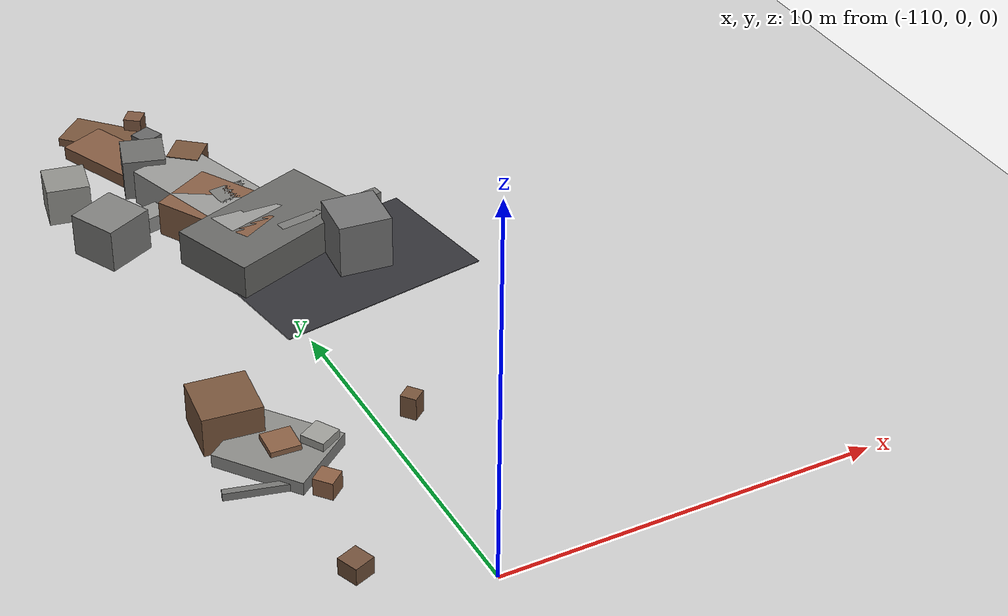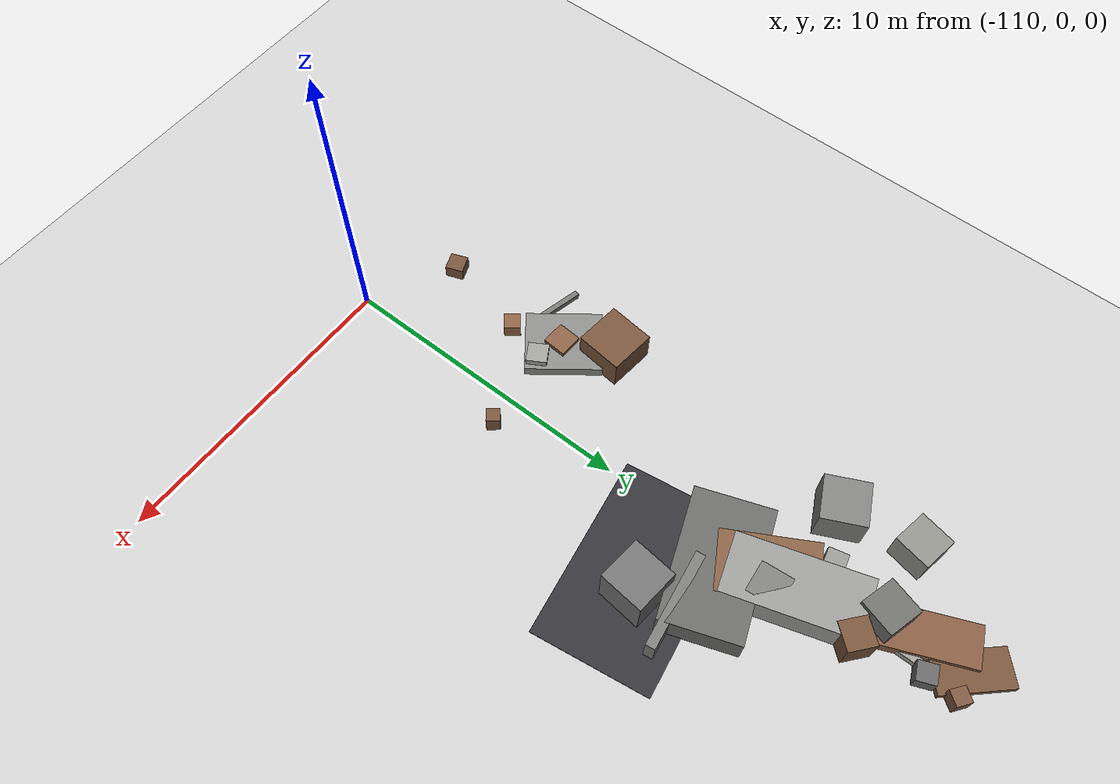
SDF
<sdf version="1.6">
 <world name="navitas_arena">
  <model name="ground_plane">
   <static>true</static>
   <link name="link">
    <collision name="collision">
     <geometry><plane><normal>0 0 1</normal><size>400 400</size></plane></geometry>
     <surface><friction><ode><mu>0.8</mu><mu2>0.8</mu2></ode></friction></surface>
    </collision>
    <visual name="visual">
     <cast_shadows>false</cast_shadows>
     <geometry><plane><normal>0 0 1</normal><size>400 400</size></plane></geometry>
     <material>
      <script><uri>file://media/materials/scripts/gazebo.material</uri><name>Gazebo/Grey</name></script>
     </material>
    </visual>
   </link>
  </model>
  <model name="road_kolay_1_15">
   <static>true</static>
   <pose>-107.834 12.629 0.040 0 0 1.725</pose>
   <link name="link">
    <collision name="col"><geometry><box><size>3.829 6.000 0.020</size></box></geometry></collision>
    <visual name="vis">
     <geometry><box><size>3.829 6.000 0.020</size></box></geometry>
     <material><ambient>0.20 0.20 0.22 1</ambient><diffuse>0.20 0.20 0.22 1</diffuse></material>
    </visual>
   </link>
  </model>
  <model name="blk_kolay_1_1_0">
   <static>true</static>
   <pose>-107.355 12.857 0.773 0 0 3.042</pose>
   <link name="link">
    <collision name="col"><geometry><box><size>1.461 1.461 1.546</size></box></geometry></collision>
    <visual name="vis">
     <geometry><box><size>1.461 1.461 1.546</size></box></geometry>
     <material><ambient>0.45 0.45 0.45 1</ambient><diffuse>0.45 0.45 0.45 1</diffuse></material>
    </visual>
   </link>
  </model>
  <model name="blk_kolay_1_1_1">
   <static>true</static>
   <pose>-109.587 15.832 0.500 0 0 1.661</pose>
   <link name="link">
    <collision name="col"><geometry><box><size>1.030 1.030 1.000</size></box></geometry></collision>
    <visual name="vis">
     <geometry><box><size>1.030 1.030 1.000</size></box></geometry>
     <material><ambient>0.49 0.49 0.48 1</ambient><diffuse>0.49 0.49 0.48 1</diffuse></material>
    </visual>
   </link>
  </model>
  <model name="blk_kolay_1_1_2">
   <static>true</static>
   <pose>-110.018 15.518 0.500 0 0 2.084</pose>
   <link name="link">
    <collision name="col"><geometry><box><size>3.002 1.896 1.000</size></box></geometry></collision>
    <visual name="vis">
     <geometry><box><size>3.002 1.896 1.000</size></box></geometry>
     <material><ambient>0.53 0.37 0.27 1</ambient><diffuse>0.53 0.37 0.27 1</diffuse></material>
    </visual>
   </link>
  </model>
  <model name="blk_kolay_1_1_4">
   <static>true</static>
   <pose>-109.204 14.346 0.500 0 0 0.350</pose>
   <link name="link">
    <collision name="col"><geometry><box><size>4.220 2.503 1.000</size></box></geometry></collision>
    <visual name="vis">
     <geometry><box><size>4.220 2.503 1.000</size></box></geometry>
     <material><ambient>0.41 0.41 0.40 1</ambient><diffuse>0.41 0.41 0.40 1</diffuse></material>
    </visual>
   </link>
  </model>
  <model name="blk_kolay_1_1_5">
   <static>true</static>
   <pose>-107.612 14.014 0.500 0 0 0.144</pose>
   <link name="link">
    <collision name="col"><geometry><box><size>3.121 0.307 1.000</size></box></geometry></collision>
    <visual name="vis">
     <geometry><box><size>3.121 0.307 1.000</size></box></geometry>
     <material><ambient>0.48 0.48 0.47 1</ambient><diffuse>0.48 0.48 0.47 1</diffuse></material>
    </visual>
   </link>
  </model>
  <model name="blk_kolay_1_1_8">
   <static>true</static>
   <pose>-110.063 16.447 0.500 0 0 1.879</pose>
   <link name="link">
    <collision name="col"><geometry><box><size>4.154 1.918 1.000</size></box></geometry></collision>
    <visual name="vis">
     <geometry><box><size>4.154 1.918 1.000</size></box></geometry>
     <material><ambient>0.60 0.60 0.59 1</ambient><diffuse>0.60 0.60 0.59 1</diffuse></material>
    </visual>
   </link>
  </model>
  <model name="deb_kolay_1">
   <static>true</static>
   <pose>-112.604 6.181 0.177 0 0 2.223</pose>
   <link name="link">
    <collision name="col"><geometry><box><size>2.474 2.076 0.354</size></box></geometry></collision>
    <visual name="vis">
     <geometry><box><size>2.474 2.076 0.354</size></box></geometry>
     <material><ambient>0.54 0.54 0.53 1</ambient><diffuse>0.54 0.54 0.53 1</diffuse></material>
    </visual>
   </link>
  </model>
  <model name="deb_kolay_33">
   <static>true</static>
   <pose>-113.350 7.630 0.538 0 0 1.461</pose>
   <link name="link">
    <collision name="col"><geometry><box><size>1.538 1.538 1.075</size></box></geometry></collision>
    <visual name="vis">
     <geometry><box><size>1.538 1.538 1.075</size></box></geometry>
     <material><ambient>0.47 0.33 0.23 1</ambient><diffuse>0.47 0.33 0.23 1</diffuse></material>
    </visual>
   </link>
  </model>
  <model name="deb_kolay_39">
   <static>true</static>
   <pose>-113.474 5.089 0.104 0 0 2.896</pose>
   <link name="link">
    <collision name="col"><geometry><box><size>1.947 0.180 0.209</size></box></geometry></collision>
    <visual name="vis">
     <geometry><box><size>1.947 0.180 0.209</size></box></geometry>
     <material><ambient>0.46 0.46 0.45 1</ambient><diffuse>0.46 0.46 0.45 1</diffuse></material>
    </visual>
   </link>
  </model>
  <model name="deb_kolay_40">
   <static>true</static>
   <pose>-111.299 19.920 0.194 0 0 1.976</pose>
   <link name="link">
    <collision name="col"><geometry><box><size>3.321 1.327 0.388</size></box></geometry></collision>
    <visual name="vis">
     <geometry><box><size>3.321 1.327 0.388</size></box></geometry>
     <material><ambient>0.52 0.36 0.26 1</ambient><diffuse>0.52 0.36 0.26 1</diffuse></material>
    </visual>
   </link>
  </model>
  <model name="deb_kolay_44">
   <static>true</static>
   <pose>-113.415 18.586 0.525 0 0 2.947</pose>
   <link name="link">
    <collision name="col"><geometry><box><size>1.169 1.169 1.051</size></box></geometry></collision>
    <visual name="vis">
     <geometry><box><size>1.169 1.169 1.051</size></box></geometry>
     <material><ambient>0.56 0.56 0.54 1</ambient><diffuse>0.56 0.56 0.54 1</diffuse></material>
    </visual>
   </link>
  </model>
  <model name="deb_kolay_58">
   <static>true</static>
   <pose>-110.566 19.311 0.124 0 0 1.576</pose>
   <link name="link">
    <collision name="col"><geometry><box><size>2.914 0.251 0.248</size></box></geometry></collision>
    <visual name="vis">
     <geometry><box><size>2.914 0.251 0.248</size></box></geometry>
     <material><ambient>0.60 0.60 0.58 1</ambient><diffuse>0.60 0.60 0.58 1</diffuse></material>
    </visual>
   </link>
  </model>
  <model name="deb_kolay_59">
   <static>true</static>
   <pose>-113.006 16.190 0.604 0 0 2.020</pose>
   <link name="link">
    <collision name="col"><geometry><box><size>1.423 1.423 1.209</size></box></geometry></collision>
    <visual name="vis">
     <geometry><box><size>1.423 1.423 1.209</size></box></geometry>
     <material><ambient>0.50 0.50 0.49 1</ambient><diffuse>0.50 0.50 0.49 1</diffuse></material>
    </visual>
   </link>
  </model>
  <model name="deb_kolay_62">
   <static>true</static>
   <pose>-110.332 20.554 0.261 0 0 0.390</pose>
   <link name="link">
    <collision name="col"><geometry><box><size>0.606 0.606 0.522</size></box></geometry></collision>
    <visual name="vis">
     <geometry><box><size>0.606 0.606 0.522</size></box></geometry>
     <material><ambient>0.40 0.40 0.40 1</ambient><diffuse>0.40 0.40 0.40 1</diffuse></material>
    </visual>
   </link>
  </model>
  <model name="deb_kolay_69">
   <static>true</static>
   <pose>-111.652 5.869 0.291 0 0 0.526</pose>
   <link name="link">
    <collision name="col"><geometry><box><size>0.668 0.668 0.582</size></box></geometry></collision>
    <visual name="vis">
     <geometry><box><size>0.668 0.668 0.582</size></box></geometry>
     <material><ambient>0.62 0.62 0.60 1</ambient><diffuse>0.62 0.62 0.60 1</diffuse></material>
    </visual>
   </link>
  </model>
  <model name="deb_kolay_80">
   <static>true</static>
   <pose>-112.114 4.457 0.242 0 0 0.695</pose>
   <link name="link">
    <collision name="col"><geometry><box><size>0.529 0.529 0.484</size></box></geometry></collision>
    <visual name="vis">
     <geometry><box><size>0.529 0.529 0.484</size></box></geometry>
     <material><ambient>0.55 0.38 0.27 1</ambient><diffuse>0.55 0.38 0.27 1</diffuse></material>
    </visual>
   </link>
  </model>
  <model name="deb_kolay_89">
   <static>true</static>
   <pose>-112.556 6.144 0.250 0 0 3.083</pose>
   <link name="link">
    <collision name="col"><geometry><box><size>0.787 0.787 0.501</size></box></geometry></collision>
    <visual name="vis">
     <geometry><box><size>0.787 0.787 0.501</size></box></geometry>
     <material><ambient>0.54 0.38 0.27 1</ambient><diffuse>0.54 0.38 0.27 1</diffuse></material>
    </visual>
   </link>
  </model>
  <model name="deb_kolay_93">
   <static>true</static>
   <pose>-112.758 1.564 0.235 0 0 1.932</pose>
   <link name="link">
    <collision name="col"><geometry><box><size>0.585 0.585 0.469</size></box></geometry></collision>
    <visual name="vis">
     <geometry><box><size>0.585 0.585 0.469</size></box></geometry>
     <material><ambient>0.45 0.32 0.23 1</ambient><diffuse>0.45 0.32 0.23 1</diffuse></material>
    </visual>
   </link>
  </model>
  <model name="deb_kolay_107">
   <static>true</static>
   <pose>-110.305 21.578 0.292 0 0 2.501</pose>
   <link name="link">
    <collision name="col"><geometry><box><size>0.497 0.497 0.584</size></box></geometry></collision>
    <visual name="vis">
     <geometry><box><size>0.497 0.497 0.584</size></box></geometry>
     <material><ambient>0.49 0.34 0.25 1</ambient><diffuse>0.49 0.34 0.25 1</diffuse></material>
    </visual>
   </link>
  </model>
  <model name="deb_kolay_116">
   <static>true</static>
   <pose>-109.893 18.480 0.511 0 0 2.443</pose>
   <link name="link">
    <collision name="col"><geometry><box><size>0.901 0.901 1.023</size></box></geometry></collision>
    <visual name="vis">
     <geometry><box><size>0.901 0.901 1.023</size></box></geometry>
     <material><ambient>0.47 0.33 0.23 1</ambient><diffuse>0.47 0.33 0.23 1</diffuse></material>
    </visual>
   </link>
  </model>
  <model name="deb_kolay_118">
   <static>true</static>
   <pose>-111.600 16.894 0.224 0 0 1.792</pose>
   <link name="link">
    <collision name="col"><geometry><box><size>0.634 0.634 0.448</size></box></geometry></collision>
    <visual name="vis">
     <geometry><box><size>0.634 0.634 0.448</size></box></geometry>
     <material><ambient>0.58 0.58 0.57 1</ambient><diffuse>0.58 0.58 0.57 1</diffuse></material>
    </visual>
   </link>
  </model>
  <model name="deb_kolay_120">
   <static>true</static>
   <pose>-111.267 21.534 0.119 0 0 2.323</pose>
   <link name="link">
    <collision name="col"><geometry><box><size>2.272 1.202 0.239</size></box></geometry></collision>
    <visual name="vis">
     <geometry><box><size>2.272 1.202 0.239</size></box></geometry>
     <material><ambient>0.47 0.33 0.23 1</ambient><diffuse>0.47 0.33 0.23 1</diffuse></material>
    </visual>
   </link>
  </model>
  <model name="deb_kolay_124">
   <static>true</static>
   <pose>-111.075 18.820 0.578 0 0 2.856</pose>
   <link name="link">
    <collision name="col"><geometry><box><size>1.179 1.179 1.157</size></box></geometry></collision>
    <visual name="vis">
     <geometry><box><size>1.179 1.179 1.157</size></box></geometry>
     <material><ambient>0.43 0.43 0.42 1</ambient><diffuse>0.43 0.43 0.42 1</diffuse></material>
    </visual>
   </link>
  </model>
  <model name="deb_kolay_125">
   <static>true</static>
   <pose>-109.061 6.187 0.311 0 0 2.244</pose>
   <link name="link">
    <collision name="col"><geometry><box><size>0.431 0.431 0.622</size></box></geometry></collision>
    <visual name="vis">
     <geometry><box><size>0.431 0.431 0.622</size></box></geometry>
     <material><ambient>0.47 0.33 0.23 1</ambient><diffuse>0.47 0.33 0.23 1</diffuse></material>
    </visual>
   </link>
  </model>
 </world>
</sdf>
